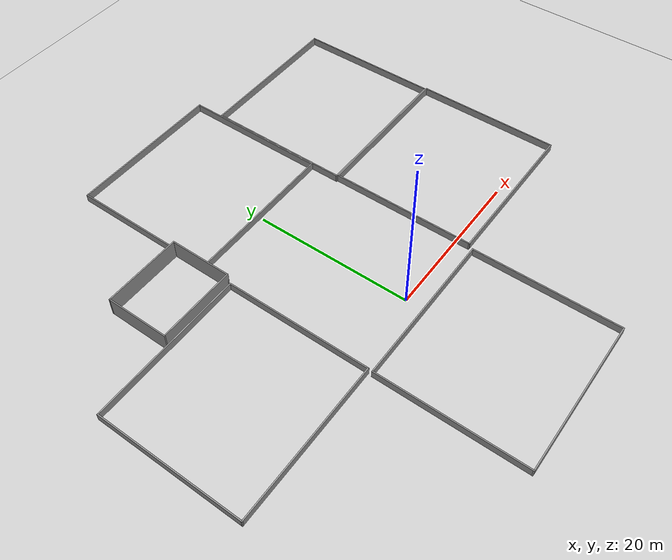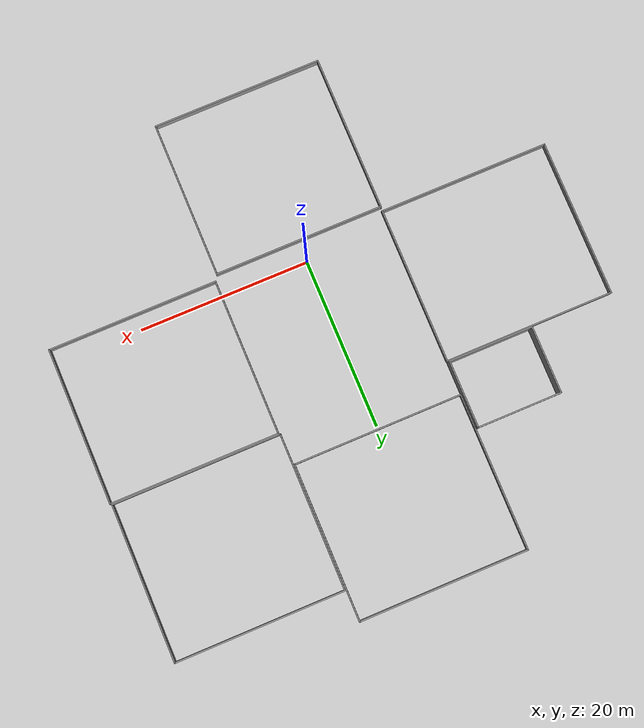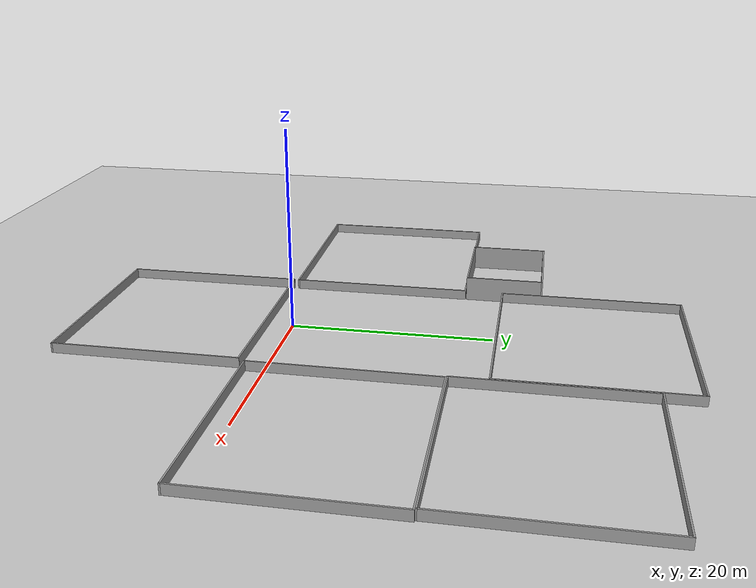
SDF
<sdf version="1.6">
 <world name="default">
  <light name="sun" type="directional">
   <pose>0 0 10 0 -0 0</pose>
   <diffuse>0.8 0.8 0.8 1</diffuse>
   <specular>0.2 0.2 0.2 1</specular>
   <attenuation>
    <range>1000</range>
    <constant>0.9</constant>
    <linear>0.01</linear>
    <quadratic>0.001</quadratic>
   </attenuation>
   <direction>-0.5 0.1 -0.9</direction>
  </light>
  <model name="ground_plane">
   <static>1</static>
   <link name="link">
    <collision name="collision">
     <geometry><plane><normal>0 0 1</normal><size>100 100</size></plane></geometry>
     <surface><friction><ode><mu>100</mu><mu2>50</mu2></ode></friction></surface>
    </collision>
    <visual name="visual">
     <cast_shadows>0</cast_shadows>
     <geometry><plane><normal>0 0 1</normal><size>100 100</size></plane></geometry>
     <material>
      <script><uri>file://media/materials/scripts/gazebo.material</uri><name>Gazebo/Grey</name></script>
     </material>
    </visual>
   </link>
  </model>
  <gravity>0 0 -9.8</gravity>
  <magnetic_field>6e-06 2.3e-05 -4.2e-05</magnetic_field>
  <atmosphere type="adiabatic"/>
  <physics name="default_physics" default="0" type="ode">
   <max_step_size>0.001</max_step_size>
   <real_time_factor>1</real_time_factor>
   <real_time_update_rate>1000</real_time_update_rate>
  </physics>
  <scene><ambient>0.4 0.4 0.4 1</ambient><background>0.7 0.7 0.7 1</background><shadows>1</shadows></scene>
  <spherical_coordinates>
   <surface_model>EARTH_WGS84</surface_model>
   <latitude_deg>0</latitude_deg>
   <longitude_deg>0</longitude_deg>
   <elevation>0</elevation>
   <heading_deg>0</heading_deg>
  </spherical_coordinates>
  <model name="map1">
   <pose>-0.105005 -11.6607 0 0 -0 0</pose>
   <link name="Wall_0">
    <collision name="Wall_0_Collision">
     <geometry><box><size>20 0.15 1</size></box></geometry>
     <pose>0 0 0.5 0 -0 0</pose>
    </collision>
    <visual name="Wall_0_Visual">
     <pose>0 0 0.5 0 -0 0</pose>
     <geometry><box><size>20 0.15 1</size></box></geometry>
     <material>
      <script><uri>file://media/materials/scripts/gazebo.material</uri><name>Gazebo/Grey</name></script>
      <ambient>1 1 1 1</ambient>
     </material>
     <meta><layer>0</layer></meta>
    </visual>
    <pose>0 9.175 0 0 -0 0</pose>
   </link>
   <link name="Wall_3">
    <collision name="Wall_3_Collision">
     <geometry><box><size>18.5 0.15 1</size></box></geometry>
     <pose>0 0 0.5 0 -0 0</pose>
    </collision>
    <visual name="Wall_3_Visual">
     <pose>0 0 0.5 0 -0 0</pose>
     <geometry><box><size>18.5 0.15 1</size></box></geometry>
     <material>
      <script><uri>file://media/materials/scripts/gazebo.material</uri><name>Gazebo/Grey</name></script>
      <ambient>1 1 1 1</ambient>
     </material>
     <meta><layer>0</layer></meta>
    </visual>
    <pose>9.925 0 0 0 -0 -1.5708</pose>
   </link>
   <link name="Wall_4">
    <collision name="Wall_4_Collision">
     <geometry><box><size>20 0.15 1</size></box></geometry>
     <pose>0 0 0.5 0 -0 0</pose>
    </collision>
    <visual name="Wall_4_Visual">
     <pose>0 0 0.5 0 -0 0</pose>
     <geometry><box><size>20 0.15 1</size></box></geometry>
     <material>
      <script><uri>file://media/materials/scripts/gazebo.material</uri><name>Gazebo/Grey</name></script>
      <ambient>1 1 1 1</ambient>
     </material>
     <meta><layer>0</layer></meta>
    </visual>
    <pose>0 -9.175 0 0 -0 3.14159</pose>
   </link>
   <link name="Wall_5">
    <collision name="Wall_5_Collision">
     <geometry><box><size>18.5 0.15 1</size></box></geometry>
     <pose>0 0 0.5 0 -0 0</pose>
    </collision>
    <visual name="Wall_5_Visual">
     <pose>0 0 0.5 0 -0 0</pose>
     <geometry><box><size>18.5 0.15 1</size></box></geometry>
     <material>
      <script><uri>file://media/materials/scripts/gazebo.material</uri><name>Gazebo/Grey</name></script>
      <ambient>1 1 1 1</ambient>
     </material>
     <meta><layer>0</layer></meta>
    </visual>
    <pose>-9.925 0 0 0 -0 1.5708</pose>
   </link>
   <static>1</static>
  </model>
  <model name="map1_0">
   <pose>20.218 7.40965 0 0 -0 0</pose>
   <link name="Wall_0">
    <collision name="Wall_0_Collision">
     <geometry><box><size>20 0.15 1</size></box></geometry>
     <pose>0 0 0.5 0 -0 0</pose>
    </collision>
    <visual name="Wall_0_Visual">
     <pose>0 0 0.5 0 -0 0</pose>
     <geometry><box><size>20 0.15 1</size></box></geometry>
     <material>
      <script><uri>file://media/materials/scripts/gazebo.material</uri><name>Gazebo/Grey</name></script>
      <ambient>1 1 1 1</ambient>
     </material>
     <meta><layer>0</layer></meta>
    </visual>
    <pose>0 9.175 0 0 -0 0</pose>
   </link>
   <link name="Wall_3">
    <collision name="Wall_3_Collision">
     <geometry><box><size>18.5 0.15 1</size></box></geometry>
     <pose>0 0 0.5 0 -0 0</pose>
    </collision>
    <visual name="Wall_3_Visual">
     <pose>0 0 0.5 0 -0 0</pose>
     <geometry><box><size>18.5 0.15 1</size></box></geometry>
     <material>
      <script><uri>file://media/materials/scripts/gazebo.material</uri><name>Gazebo/Grey</name></script>
      <ambient>1 1 1 1</ambient>
     </material>
     <meta><layer>0</layer></meta>
    </visual>
    <pose>9.925 0 0 0 -0 -1.5708</pose>
   </link>
   <link name="Wall_4">
    <collision name="Wall_4_Collision">
     <geometry><box><size>20 0.15 1</size></box></geometry>
     <pose>0 0 0.5 0 -0 0</pose>
    </collision>
    <visual name="Wall_4_Visual">
     <pose>0 0 0.5 0 -0 0</pose>
     <geometry><box><size>20 0.15 1</size></box></geometry>
     <material>
      <script><uri>file://media/materials/scripts/gazebo.material</uri><name>Gazebo/Grey</name></script>
      <ambient>1 1 1 1</ambient>
     </material>
     <meta><layer>0</layer></meta>
    </visual>
    <pose>0 -9.175 0 0 -0 3.14159</pose>
   </link>
   <link name="Wall_5">
    <collision name="Wall_5_Collision">
     <geometry><box><size>18.5 0.15 1</size></box></geometry>
     <pose>0 0 0.5 0 -0 0</pose>
    </collision>
    <visual name="Wall_5_Visual">
     <pose>0 0 0.5 0 -0 0</pose>
     <geometry><box><size>18.5 0.15 1</size></box></geometry>
     <material>
      <script><uri>file://media/materials/scripts/gazebo.material</uri><name>Gazebo/Grey</name></script>
      <ambient>1 1 1 1</ambient>
     </material>
     <meta><layer>0</layer></meta>
    </visual>
    <pose>-9.925 0 0 0 -0 1.5708</pose>
   </link>
   <static>1</static>
  </model>
  <model name="map1_1">
   <pose>-19.912 7.23966 0 0 -0 0</pose>
   <link name="Wall_0">
    <collision name="Wall_0_Collision">
     <geometry><box><size>20 0.15 1</size></box></geometry>
     <pose>0 0 0.5 0 -0 0</pose>
    </collision>
    <visual name="Wall_0_Visual">
     <pose>0 0 0.5 0 -0 0</pose>
     <geometry><box><size>20 0.15 1</size></box></geometry>
     <material>
      <script><uri>file://media/materials/scripts/gazebo.material</uri><name>Gazebo/Grey</name></script>
      <ambient>1 1 1 1</ambient>
     </material>
     <meta><layer>0</layer></meta>
    </visual>
    <pose>0 9.175 0 0 -0 0</pose>
   </link>
   <link name="Wall_3">
    <collision name="Wall_3_Collision">
     <geometry><box><size>18.5 0.15 1</size></box></geometry>
     <pose>0 0 0.5 0 -0 0</pose>
    </collision>
    <visual name="Wall_3_Visual">
     <pose>0 0 0.5 0 -0 0</pose>
     <geometry><box><size>18.5 0.15 1</size></box></geometry>
     <material>
      <script><uri>file://media/materials/scripts/gazebo.material</uri><name>Gazebo/Grey</name></script>
      <ambient>1 1 1 1</ambient>
     </material>
     <meta><layer>0</layer></meta>
    </visual>
    <pose>9.925 0 0 0 -0 -1.5708</pose>
   </link>
   <link name="Wall_4">
    <collision name="Wall_4_Collision">
     <geometry><box><size>20 0.15 1</size></box></geometry>
     <pose>0 0 0.5 0 -0 0</pose>
    </collision>
    <visual name="Wall_4_Visual">
     <pose>0 0 0.5 0 -0 0</pose>
     <geometry><box><size>20 0.15 1</size></box></geometry>
     <material>
      <script><uri>file://media/materials/scripts/gazebo.material</uri><name>Gazebo/Grey</name></script>
      <ambient>1 1 1 1</ambient>
     </material>
     <meta><layer>0</layer></meta>
    </visual>
    <pose>0 -9.175 0 0 -0 3.14159</pose>
   </link>
   <link name="Wall_5">
    <collision name="Wall_5_Collision">
     <geometry><box><size>18.5 0.15 1</size></box></geometry>
     <pose>0 0 0.5 0 -0 0</pose>
    </collision>
    <visual name="Wall_5_Visual">
     <pose>0 0 0.5 0 -0 0</pose>
     <geometry><box><size>18.5 0.15 1</size></box></geometry>
     <material>
      <script><uri>file://media/materials/scripts/gazebo.material</uri><name>Gazebo/Grey</name></script>
      <ambient>1 1 1 1</ambient>
     </material>
     <meta><layer>0</layer></meta>
    </visual>
    <pose>-9.925 0 0 0 -0 1.5708</pose>
   </link>
   <static>1</static>
  </model>
  <model name="map1_2">
   <pose>20.0557 25.895 0 0 -0 0</pose>
   <link name="Wall_0">
    <collision name="Wall_0_Collision">
     <geometry><box><size>20 0.15 1</size></box></geometry>
     <pose>0 0 0.5 0 -0 0</pose>
    </collision>
    <visual name="Wall_0_Visual">
     <pose>0 0 0.5 0 -0 0</pose>
     <geometry><box><size>20 0.15 1</size></box></geometry>
     <material>
      <script><uri>file://media/materials/scripts/gazebo.material</uri><name>Gazebo/Grey</name></script>
      <ambient>1 1 1 1</ambient>
     </material>
     <meta><layer>0</layer></meta>
    </visual>
    <pose>0 9.175 0 0 -0 0</pose>
   </link>
   <link name="Wall_3">
    <collision name="Wall_3_Collision">
     <geometry><box><size>18.5 0.15 1</size></box></geometry>
     <pose>0 0 0.5 0 -0 0</pose>
    </collision>
    <visual name="Wall_3_Visual">
     <pose>0 0 0.5 0 -0 0</pose>
     <geometry><box><size>18.5 0.15 1</size></box></geometry>
     <material>
      <script><uri>file://media/materials/scripts/gazebo.material</uri><name>Gazebo/Grey</name></script>
      <ambient>1 1 1 1</ambient>
     </material>
     <meta><layer>0</layer></meta>
    </visual>
    <pose>9.925 0 0 0 -0 -1.5708</pose>
   </link>
   <link name="Wall_4">
    <collision name="Wall_4_Collision">
     <geometry><box><size>20 0.15 1</size></box></geometry>
     <pose>0 0 0.5 0 -0 0</pose>
    </collision>
    <visual name="Wall_4_Visual">
     <pose>0 0 0.5 0 -0 0</pose>
     <geometry><box><size>20 0.15 1</size></box></geometry>
     <material>
      <script><uri>file://media/materials/scripts/gazebo.material</uri><name>Gazebo/Grey</name></script>
      <ambient>1 1 1 1</ambient>
     </material>
     <meta><layer>0</layer></meta>
    </visual>
    <pose>0 -9.175 0 0 -0 3.14159</pose>
   </link>
   <link name="Wall_5">
    <collision name="Wall_5_Collision">
     <geometry><box><size>18.5 0.15 1</size></box></geometry>
     <pose>0 0 0.5 0 -0 0</pose>
    </collision>
    <visual name="Wall_5_Visual">
     <pose>0 0 0.5 0 -0 0</pose>
     <geometry><box><size>18.5 0.15 1</size></box></geometry>
     <material>
      <script><uri>file://media/materials/scripts/gazebo.material</uri><name>Gazebo/Grey</name></script>
      <ambient>1 1 1 1</ambient>
     </material>
     <meta><layer>0</layer></meta>
    </visual>
    <pose>-9.925 0 0 0 -0 1.5708</pose>
   </link>
   <static>1</static>
  </model>
  <model name="world1">
   <pose>-14.9472 20.5538 0 0 -0 0</pose>
   <link name="Wall_0">
    <collision name="Wall_0_Collision">
     <geometry><box><size>10 0.15 2.5</size></box></geometry>
     <pose>0 0 1.25 0 -0 0</pose>
    </collision>
    <visual name="Wall_0_Visual">
     <pose>0 0 1.25 0 -0 0</pose>
     <geometry><box><size>10 0.15 2.5</size></box></geometry>
     <material>
      <script><uri>file://media/materials/scripts/gazebo.material</uri><name>Gazebo/Grey</name></script>
      <ambient>1 1 1 1</ambient>
     </material>
     <meta><layer>0</layer></meta>
    </visual>
    <pose>0 -3.925 0 0 -0 0</pose>
   </link>
   <link name="Wall_4">
    <collision name="Wall_4_Collision">
     <geometry><box><size>8 0.15 2.5</size></box></geometry>
     <pose>0 0 1.25 0 -0 0</pose>
    </collision>
    <visual name="Wall_4_Visual">
     <pose>0 0 1.25 0 -0 0</pose>
     <geometry><box><size>8 0.15 2.5</size></box></geometry>
     <material>
      <script><uri>file://media/materials/scripts/gazebo.material</uri><name>Gazebo/Grey</name></script>
      <ambient>1 1 1 1</ambient>
     </material>
     <meta><layer>0</layer></meta>
    </visual>
    <pose>4.925 0 0 0 -0 1.5708</pose>
   </link>
   <link name="Wall_5">
    <collision name="Wall_5_Collision">
     <geometry><box><size>10 0.15 2.5</size></box></geometry>
     <pose>0 0 1.25 0 -0 0</pose>
    </collision>
    <visual name="Wall_5_Visual">
     <pose>0 0 1.25 0 -0 0</pose>
     <geometry><box><size>10 0.15 2.5</size></box></geometry>
     <material>
      <script><uri>file://media/materials/scripts/gazebo.material</uri><name>Gazebo/Grey</name></script>
      <ambient>1 1 1 1</ambient>
     </material>
     <meta><layer>0</layer></meta>
    </visual>
    <pose>0 3.925 0 0 -0 3.14159</pose>
   </link>
   <link name="Wall_6">
    <collision name="Wall_6_Collision">
     <geometry><box><size>8 0.15 2.5</size></box></geometry>
     <pose>0 0 1.25 0 -0 0</pose>
    </collision>
    <visual name="Wall_6_Visual">
     <pose>0 0 1.25 0 -0 0</pose>
     <geometry><box><size>8 0.15 2.5</size></box></geometry>
     <material>
      <script><uri>file://media/materials/scripts/gazebo.material</uri><name>Gazebo/Grey</name></script>
      <ambient>1 1 1 1</ambient>
     </material>
     <meta><layer>0</layer></meta>
    </visual>
    <pose>-4.925 0 0 0 -0 -1.5708</pose>
   </link>
   <static>1</static>
  </model>
  <model name="map1_3">
   <pose>0.032402 29.5688 0 0 -0 0</pose>
   <link name="Wall_0">
    <collision name="Wall_0_Collision">
     <geometry><box><size>20 0.15 1</size></box></geometry>
     <pose>0 0 0.5 0 -0 0</pose>
    </collision>
    <visual name="Wall_0_Visual">
     <pose>0 0 0.5 0 -0 0</pose>
     <geometry><box><size>20 0.15 1</size></box></geometry>
     <material>
      <script><uri>file://media/materials/scripts/gazebo.material</uri><name>Gazebo/Grey</name></script>
      <ambient>1 1 1 1</ambient>
     </material>
     <meta><layer>0</layer></meta>
    </visual>
    <pose>0 9.175 0 0 -0 0</pose>
   </link>
   <link name="Wall_3">
    <collision name="Wall_3_Collision">
     <geometry><box><size>18.5 0.15 1</size></box></geometry>
     <pose>0 0 0.5 0 -0 0</pose>
    </collision>
    <visual name="Wall_3_Visual">
     <pose>0 0 0.5 0 -0 0</pose>
     <geometry><box><size>18.5 0.15 1</size></box></geometry>
     <material>
      <script><uri>file://media/materials/scripts/gazebo.material</uri><name>Gazebo/Grey</name></script>
      <ambient>1 1 1 1</ambient>
     </material>
     <meta><layer>0</layer></meta>
    </visual>
    <pose>9.925 0 0 0 -0 -1.5708</pose>
   </link>
   <link name="Wall_4">
    <collision name="Wall_4_Collision">
     <geometry><box><size>20 0.15 1</size></box></geometry>
     <pose>0 0 0.5 0 -0 0</pose>
    </collision>
    <visual name="Wall_4_Visual">
     <pose>0 0 0.5 0 -0 0</pose>
     <geometry><box><size>20 0.15 1</size></box></geometry>
     <material>
      <script><uri>file://media/materials/scripts/gazebo.material</uri><name>Gazebo/Grey</name></script>
      <ambient>1 1 1 1</ambient>
     </material>
     <meta><layer>0</layer></meta>
    </visual>
    <pose>0 -9.175 0 0 -0 3.14159</pose>
   </link>
   <link name="Wall_5">
    <collision name="Wall_5_Collision">
     <geometry><box><size>18.5 0.15 1</size></box></geometry>
     <pose>0 0 0.5 0 -0 0</pose>
    </collision>
    <visual name="Wall_5_Visual">
     <pose>0 0 0.5 0 -0 0</pose>
     <geometry><box><size>18.5 0.15 1</size></box></geometry>
     <material>
      <script><uri>file://media/materials/scripts/gazebo.material</uri><name>Gazebo/Grey</name></script>
      <ambient>1 1 1 1</ambient>
     </material>
     <meta><layer>0</layer></meta>
    </visual>
    <pose>-9.925 0 0 0 -0 1.5708</pose>
   </link>
   <static>1</static>
  </model>
 </world>
</sdf>
